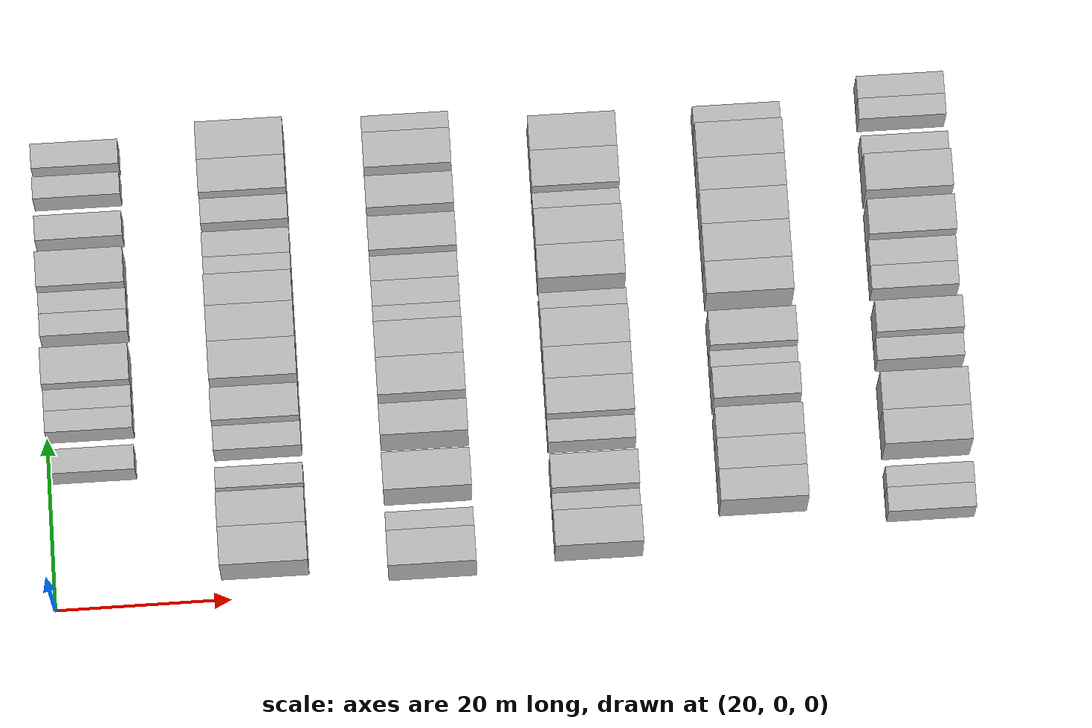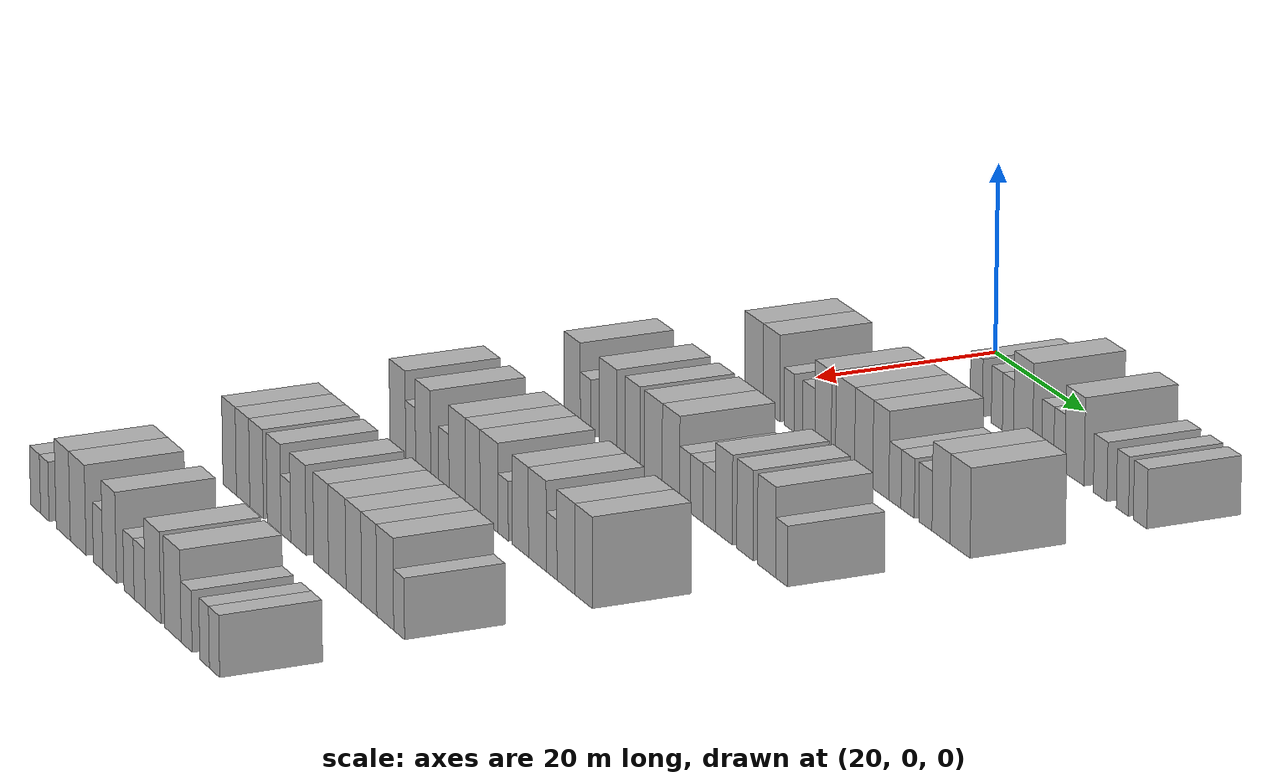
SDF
<sdf version="1.6">
 <world name="default">
  <model name="building_90">
   <static>1</static>
   <pose>25.0000 16.0833 0 0.000000 0.000000 0.000000</pose>
   <link name="link">
    <pose>0 0 3.00 0 0 0</pose>
    <collision name="collision"><geometry><box><size>10.0000 2.8036 6.0000</size></box></geometry></collision>
    <visual name="visual">
     <cast_shadows>0</cast_shadows>
     <geometry><box><size>10.0000 2.8036 6.0000</size></box></geometry>
     <material>
      <script>
       <uri>model://HANNAS_wall/materials/scripts</uri>
       <uri>model://HANNAS_wall/materials/textures</uri>
       <name>vrc/HANNAS_wall</name>
      </script>
     </material>
    </visual>
   </link>
  </model>
  <model name="building_91">
   <static>1</static>
   <pose>25.0000 20.7323 0 0.000000 0.000000 0.000000</pose>
   <link name="link">
    <pose>0 0 3.00 0 0 0</pose>
    <collision name="collision"><geometry><box><size>10.0000 2.4944 6.0000</size></box></geometry></collision>
    <visual name="visual">
     <cast_shadows>0</cast_shadows>
     <geometry><box><size>10.0000 2.4944 6.0000</size></box></geometry>
     <material>
      <script>
       <uri>model://HANNAS_wall/materials/scripts</uri>
       <uri>model://HANNAS_wall/materials/textures</uri>
       <name>vrc/HANNAS_wall</name>
      </script>
     </material>
    </visual>
   </link>
  </model>
  <model name="building_92">
   <static>1</static>
   <pose>25.0000 23.2109 0 0.000000 0.000000 0.000000</pose>
   <link name="link">
    <pose>0 0 3.00 0 0 0</pose>
    <collision name="collision"><geometry><box><size>10.0000 2.4626 6.0000</size></box></geometry></collision>
    <visual name="visual">
     <cast_shadows>0</cast_shadows>
     <geometry><box><size>10.0000 2.4626 6.0000</size></box></geometry>
     <material>
      <script>
       <uri>model://HANNAS_wall/materials/scripts</uri>
       <uri>model://HANNAS_wall/materials/textures</uri>
       <name>vrc/HANNAS_wall</name>
      </script>
     </material>
    </visual>
   </link>
  </model>
  <model name="building_93">
   <static>1</static>
   <pose>25.0000 26.5714 0 0.000000 0.000000 0.000000</pose>
   <link name="link">
    <pose>0 0 4.50 0 0 0</pose>
    <collision name="collision"><geometry><box><size>10.0000 4.2585 9.0000</size></box></geometry></collision>
    <visual name="visual">
     <cast_shadows>0</cast_shadows>
     <geometry><box><size>10.0000 4.2585 9.0000</size></box></geometry>
     <material>
      <script>
       <uri>model://HANNAS_wall/materials/scripts</uri>
       <uri>model://HANNAS_wall/materials/textures</uri>
       <name>vrc/HANNAS_wall</name>
      </script>
     </material>
    </visual>
   </link>
  </model>
  <model name="building_94">
   <static>1</static>
   <pose>25.0000 32.0183 0 0.000000 0.000000 0.000000</pose>
   <link name="link">
    <pose>0 0 3.00 0 0 0</pose>
    <collision name="collision"><geometry><box><size>10.0000 2.6353 6.0000</size></box></geometry></collision>
    <visual name="visual">
     <cast_shadows>0</cast_shadows>
     <geometry><box><size>10.0000 2.6353 6.0000</size></box></geometry>
     <material>
      <script>
       <uri>model://HANNAS_wall/materials/scripts</uri>
       <uri>model://HANNAS_wall/materials/textures</uri>
       <name>vrc/HANNAS_wall</name>
      </script>
     </material>
    </visual>
   </link>
  </model>
  <model name="building_95">
   <static>1</static>
   <pose>25.0000 34.5640 0 0.000000 0.000000 0.000000</pose>
   <link name="link">
    <pose>0 0 3.00 0 0 0</pose>
    <collision name="collision"><geometry><box><size>10.0000 2.4560 6.0000</size></box></geometry></collision>
    <visual name="visual">
     <cast_shadows>0</cast_shadows>
     <geometry><box><size>10.0000 2.4560 6.0000</size></box></geometry>
     <material>
      <script>
       <uri>model://HANNAS_wall/materials/scripts</uri>
       <uri>model://HANNAS_wall/materials/textures</uri>
       <name>vrc/HANNAS_wall</name>
      </script>
     </material>
    </visual>
   </link>
  </model>
  <model name="building_96">
   <static>1</static>
   <pose>25.0000 37.8626 0 0.000000 0.000000 0.000000</pose>
   <link name="link">
    <pose>0 0 4.50 0 0 0</pose>
    <collision name="collision"><geometry><box><size>10.0000 4.1412 9.0000</size></box></geometry></collision>
    <visual name="visual">
     <cast_shadows>0</cast_shadows>
     <geometry><box><size>10.0000 4.1412 9.0000</size></box></geometry>
     <material>
      <script>
       <uri>model://HANNAS_wall/materials/scripts</uri>
       <uri>model://HANNAS_wall/materials/textures</uri>
       <name>vrc/HANNAS_wall</name>
      </script>
     </material>
    </visual>
   </link>
  </model>
  <model name="building_97">
   <static>1</static>
   <pose>25.0000 43.3817 0 0.000000 0.000000 0.000000</pose>
   <link name="link">
    <pose>0 0 3.00 0 0 0</pose>
    <collision name="collision"><geometry><box><size>10.0000 2.8970 6.0000</size></box></geometry></collision>
    <visual name="visual">
     <cast_shadows>0</cast_shadows>
     <geometry><box><size>10.0000 2.8970 6.0000</size></box></geometry>
     <material>
      <script>
       <uri>model://HANNAS_wall/materials/scripts</uri>
       <uri>model://HANNAS_wall/materials/textures</uri>
       <name>vrc/HANNAS_wall</name>
      </script>
     </material>
    </visual>
   </link>
  </model>
  <model name="building_98">
   <static>1</static>
   <pose>25.0000 48.1202 0 0.000000 0.000000 0.000000</pose>
   <link name="link">
    <pose>0 0 3.00 0 0 0</pose>
    <collision name="collision"><geometry><box><size>10.0000 2.5799 6.0000</size></box></geometry></collision>
    <visual name="visual">
     <cast_shadows>0</cast_shadows>
     <geometry><box><size>10.0000 2.5799 6.0000</size></box></geometry>
     <material>
      <script>
       <uri>model://HANNAS_wall/materials/scripts</uri>
       <uri>model://HANNAS_wall/materials/textures</uri>
       <name>vrc/HANNAS_wall</name>
      </script>
     </material>
    </visual>
   </link>
  </model>
  <model name="building_99">
   <static>1</static>
   <pose>25.0000 51.8459 0 0.000000 0.000000 0.000000</pose>
   <link name="link">
    <pose>0 0 3.00 0 0 0</pose>
    <collision name="collision"><geometry><box><size>10.0000 2.8715 6.0000</size></box></geometry></collision>
    <visual name="visual">
     <cast_shadows>0</cast_shadows>
     <geometry><box><size>10.0000 2.8715 6.0000</size></box></geometry>
     <material>
      <script>
       <uri>model://HANNAS_wall/materials/scripts</uri>
       <uri>model://HANNAS_wall/materials/textures</uri>
       <name>vrc/HANNAS_wall</name>
      </script>
     </material>
    </visual>
   </link>
  </model>
  <model name="building_256">
   <static>1</static>
   <pose>44.0000 4.5876 0 0.000000 0.000000 0.000000</pose>
   <link name="link">
    <pose>0 0 4.50 0 0 0</pose>
    <collision name="collision"><geometry><box><size>10.0000 4.4167 9.0000</size></box></geometry></collision>
    <visual name="visual">
     <cast_shadows>0</cast_shadows>
     <geometry><box><size>10.0000 4.4167 9.0000</size></box></geometry>
     <material>
      <script>
       <uri>model://HANNAS_wall/materials/scripts</uri>
       <uri>model://HANNAS_wall/materials/textures</uri>
       <name>vrc/HANNAS_wall</name>
      </script>
     </material>
    </visual>
   </link>
  </model>
  <model name="building_257">
   <static>1</static>
   <pose>44.0000 8.8105 0 0.000000 0.000000 0.000000</pose>
   <link name="link">
    <pose>0 0 4.50 0 0 0</pose>
    <collision name="collision"><geometry><box><size>10.0000 4.0291 9.0000</size></box></geometry></collision>
    <visual name="visual">
     <cast_shadows>0</cast_shadows>
     <geometry><box><size>10.0000 4.0291 9.0000</size></box></geometry>
     <material>
      <script>
       <uri>model://HANNAS_wall/materials/scripts</uri>
       <uri>model://HANNAS_wall/materials/textures</uri>
       <name>vrc/HANNAS_wall</name>
      </script>
     </material>
    </visual>
   </link>
  </model>
  <model name="building_258">
   <static>1</static>
   <pose>44.0000 13.0273 0 0.000000 0.000000 0.000000</pose>
   <link name="link">
    <pose>0 0 3.00 0 0 0</pose>
    <collision name="collision"><geometry><box><size>10.0000 2.4045 6.0000</size></box></geometry></collision>
    <visual name="visual">
     <cast_shadows>0</cast_shadows>
     <geometry><box><size>10.0000 2.4045 6.0000</size></box></geometry>
     <material>
      <script>
       <uri>model://HANNAS_wall/materials/scripts</uri>
       <uri>model://HANNAS_wall/materials/textures</uri>
       <name>vrc/HANNAS_wall</name>
      </script>
     </material>
    </visual>
   </link>
  </model>
  <model name="building_259">
   <static>1</static>
   <pose>44.0000 17.6497 0 0.000000 0.000000 0.000000</pose>
   <link name="link">
    <pose>0 0 3.00 0 0 0</pose>
    <collision name="collision"><geometry><box><size>10.0000 2.8404 6.0000</size></box></geometry></collision>
    <visual name="visual">
     <cast_shadows>0</cast_shadows>
     <geometry><box><size>10.0000 2.8404 6.0000</size></box></geometry>
     <material>
      <script>
       <uri>model://HANNAS_wall/materials/scripts</uri>
       <uri>model://HANNAS_wall/materials/textures</uri>
       <name>vrc/HANNAS_wall</name>
      </script>
     </material>
    </visual>
   </link>
  </model>
  <model name="building_260">
   <static>1</static>
   <pose>44.0000 20.9813 0 0.000000 0.000000 0.000000</pose>
   <link name="link">
    <pose>0 0 4.50 0 0 0</pose>
    <collision name="collision"><geometry><box><size>10.0000 3.8229 9.0000</size></box></geometry></collision>
    <visual name="visual">
     <cast_shadows>0</cast_shadows>
     <geometry><box><size>10.0000 3.8229 9.0000</size></box></geometry>
     <material>
      <script>
       <uri>model://HANNAS_wall/materials/scripts</uri>
       <uri>model://HANNAS_wall/materials/textures</uri>
       <name>vrc/HANNAS_wall</name>
      </script>
     </material>
    </visual>
   </link>
  </model>
  <model name="building_261">
   <static>1</static>
   <pose>44.0000 26.0855 0 0.000000 0.000000 0.000000</pose>
   <link name="link">
    <pose>0 0 4.50 0 0 0</pose>
    <collision name="collision"><geometry><box><size>10.0000 4.3855 9.0000</size></box></geometry></collision>
    <visual name="visual">
     <cast_shadows>0</cast_shadows>
     <geometry><box><size>10.0000 4.3855 9.0000</size></box></geometry>
     <material>
      <script>
       <uri>model://HANNAS_wall/materials/scripts</uri>
       <uri>model://HANNAS_wall/materials/textures</uri>
       <name>vrc/HANNAS_wall</name>
      </script>
     </material>
    </visual>
   </link>
  </model>
  <model name="building_262">
   <static>1</static>
   <pose>44.0000 30.3577 0 0.000000 0.000000 0.000000</pose>
   <link name="link">
    <pose>0 0 4.50 0 0 0</pose>
    <collision name="collision"><geometry><box><size>10.0000 4.1587 9.0000</size></box></geometry></collision>
    <visual name="visual">
     <cast_shadows>0</cast_shadows>
     <geometry><box><size>10.0000 4.1587 9.0000</size></box></geometry>
     <material>
      <script>
       <uri>model://HANNAS_wall/materials/scripts</uri>
       <uri>model://HANNAS_wall/materials/textures</uri>
       <name>vrc/HANNAS_wall</name>
      </script>
     </material>
    </visual>
   </link>
  </model>
  <model name="building_263">
   <static>1</static>
   <pose>44.0000 34.2528 0 0.000000 0.000000 0.000000</pose>
   <link name="link">
    <pose>0 0 4.50 0 0 0</pose>
    <collision name="collision"><geometry><box><size>10.0000 3.6316 9.0000</size></box></geometry></collision>
    <visual name="visual">
     <cast_shadows>0</cast_shadows>
     <geometry><box><size>10.0000 3.6316 9.0000</size></box></geometry>
     <material>
      <script>
       <uri>model://HANNAS_wall/materials/scripts</uri>
       <uri>model://HANNAS_wall/materials/textures</uri>
       <name>vrc/HANNAS_wall</name>
      </script>
     </material>
    </visual>
   </link>
  </model>
  <model name="building_264">
   <static>1</static>
   <pose>44.0000 37.4223 0 0.000000 0.000000 0.000000</pose>
   <link name="link">
    <pose>0 0 3.00 0 0 0</pose>
    <collision name="collision"><geometry><box><size>10.0000 2.7074 6.0000</size></box></geometry></collision>
    <visual name="visual">
     <cast_shadows>0</cast_shadows>
     <geometry><box><size>10.0000 2.7074 6.0000</size></box></geometry>
     <material>
      <script>
       <uri>model://HANNAS_wall/materials/scripts</uri>
       <uri>model://HANNAS_wall/materials/textures</uri>
       <name>vrc/HANNAS_wall</name>
      </script>
     </material>
    </visual>
   </link>
  </model>
  <model name="building_265">
   <static>1</static>
   <pose>44.0000 40.2513 0 0.000000 0.000000 0.000000</pose>
   <link name="link">
    <pose>0 0 3.00 0 0 0</pose>
    <collision name="collision"><geometry><box><size>10.0000 2.9506 6.0000</size></box></geometry></collision>
    <visual name="visual">
     <cast_shadows>0</cast_shadows>
     <geometry><box><size>10.0000 2.9506 6.0000</size></box></geometry>
     <material>
      <script>
       <uri>model://HANNAS_wall/materials/scripts</uri>
       <uri>model://HANNAS_wall/materials/textures</uri>
       <name>vrc/HANNAS_wall</name>
      </script>
     </material>
    </visual>
   </link>
  </model>
  <model name="building_266">
   <static>1</static>
   <pose>44.0000 44.1898 0 0.000000 0.000000 0.000000</pose>
   <link name="link">
    <pose>0 0 3.00 0 0 0</pose>
    <collision name="collision"><geometry><box><size>10.0000 2.9263 6.0000</size></box></geometry></collision>
    <visual name="visual">
     <cast_shadows>0</cast_shadows>
     <geometry><box><size>10.0000 2.9263 6.0000</size></box></geometry>
     <material>
      <script>
       <uri>model://HANNAS_wall/materials/scripts</uri>
       <uri>model://HANNAS_wall/materials/textures</uri>
       <name>vrc/HANNAS_wall</name>
      </script>
     </material>
    </visual>
   </link>
  </model>
  <model name="building_267">
   <static>1</static>
   <pose>44.0000 47.6030 0 0.000000 0.000000 0.000000</pose>
   <link name="link">
    <pose>0 0 4.50 0 0 0</pose>
    <collision name="collision"><geometry><box><size>10.0000 3.9002 9.0000</size></box></geometry></collision>
    <visual name="visual">
     <cast_shadows>0</cast_shadows>
     <geometry><box><size>10.0000 3.9002 9.0000</size></box></geometry>
     <material>
      <script>
       <uri>model://HANNAS_wall/materials/scripts</uri>
       <uri>model://HANNAS_wall/materials/textures</uri>
       <name>vrc/HANNAS_wall</name>
      </script>
     </material>
    </visual>
   </link>
  </model>
  <model name="building_268">
   <static>1</static>
   <pose>44.0000 51.7585 0 0.000000 0.000000 0.000000</pose>
   <link name="link">
    <pose>0 0 4.50 0 0 0</pose>
    <collision name="collision"><geometry><box><size>10.0000 4.4108 9.0000</size></box></geometry></collision>
    <visual name="visual">
     <cast_shadows>0</cast_shadows>
     <geometry><box><size>10.0000 4.4108 9.0000</size></box></geometry>
     <material>
      <script>
       <uri>model://HANNAS_wall/materials/scripts</uri>
       <uri>model://HANNAS_wall/materials/textures</uri>
       <name>vrc/HANNAS_wall</name>
      </script>
     </material>
    </visual>
   </link>
  </model>
  <model name="building_424">
   <static>1</static>
   <pose>63.0000 3.1468 0 0.000000 0.000000 0.000000</pose>
   <link name="link">
    <pose>0 0 4.50 0 0 0</pose>
    <collision name="collision"><geometry><box><size>10.0000 4.0609 9.0000</size></box></geometry></collision>
    <visual name="visual">
     <cast_shadows>0</cast_shadows>
     <geometry><box><size>10.0000 4.0609 9.0000</size></box></geometry>
     <material>
      <script>
       <uri>model://HANNAS_wall/materials/scripts</uri>
       <uri>model://HANNAS_wall/materials/textures</uri>
       <name>vrc/HANNAS_wall</name>
      </script>
     </material>
    </visual>
   </link>
  </model>
  <model name="building_425">
   <static>1</static>
   <pose>63.0000 6.5162 0 0.000000 0.000000 0.000000</pose>
   <link name="link">
    <pose>0 0 3.00 0 0 0</pose>
    <collision name="collision"><geometry><box><size>10.0000 2.6780 6.0000</size></box></geometry></collision>
    <visual name="visual">
     <cast_shadows>0</cast_shadows>
     <geometry><box><size>10.0000 2.6780 6.0000</size></box></geometry>
     <material>
      <script>
       <uri>model://HANNAS_wall/materials/scripts</uri>
       <uri>model://HANNAS_wall/materials/textures</uri>
       <name>vrc/HANNAS_wall</name>
      </script>
     </material>
    </visual>
   </link>
  </model>
  <model name="building_426">
   <static>1</static>
   <pose>63.0000 12.0176 0 0.000000 0.000000 0.000000</pose>
   <link name="link">
    <pose>0 0 4.50 0 0 0</pose>
    <collision name="collision"><geometry><box><size>10.0000 4.3248 9.0000</size></box></geometry></collision>
    <visual name="visual">
     <cast_shadows>0</cast_shadows>
     <geometry><box><size>10.0000 4.3248 9.0000</size></box></geometry>
     <material>
      <script>
       <uri>model://HANNAS_wall/materials/scripts</uri>
       <uri>model://HANNAS_wall/materials/textures</uri>
       <name>vrc/HANNAS_wall</name>
      </script>
     </material>
    </visual>
   </link>
  </model>
  <model name="building_427">
   <static>1</static>
   <pose>63.0000 18.0112 0 0.000000 0.000000 0.000000</pose>
   <link name="link">
    <pose>0 0 4.50 0 0 0</pose>
    <collision name="collision"><geometry><box><size>10.0000 3.6624 9.0000</size></box></geometry></collision>
    <visual name="visual">
     <cast_shadows>0</cast_shadows>
     <geometry><box><size>10.0000 3.6624 9.0000</size></box></geometry>
     <material>
      <script>
       <uri>model://HANNAS_wall/materials/scripts</uri>
       <uri>model://HANNAS_wall/materials/textures</uri>
       <name>vrc/HANNAS_wall</name>
      </script>
     </material>
    </visual>
   </link>
  </model>
  <model name="building_428">
   <static>1</static>
   <pose>63.0000 23.0240 0 0.000000 0.000000 0.000000</pose>
   <link name="link">
    <pose>0 0 4.50 0 0 0</pose>
    <collision name="collision"><geometry><box><size>10.0000 4.3631 9.0000</size></box></geometry></collision>
    <visual name="visual">
     <cast_shadows>0</cast_shadows>
     <geometry><box><size>10.0000 4.3631 9.0000</size></box></geometry>
     <material>
      <script>
       <uri>model://HANNAS_wall/materials/scripts</uri>
       <uri>model://HANNAS_wall/materials/textures</uri>
       <name>vrc/HANNAS_wall</name>
      </script>
     </material>
    </visual>
   </link>
  </model>
  <model name="building_429">
   <static>1</static>
   <pose>63.0000 27.2907 0 0.000000 0.000000 0.000000</pose>
   <link name="link">
    <pose>0 0 4.50 0 0 0</pose>
    <collision name="collision"><geometry><box><size>10.0000 4.1704 9.0000</size></box></geometry></collision>
    <visual name="visual">
     <cast_shadows>0</cast_shadows>
     <geometry><box><size>10.0000 4.1704 9.0000</size></box></geometry>
     <material>
      <script>
       <uri>model://HANNAS_wall/materials/scripts</uri>
       <uri>model://HANNAS_wall/materials/textures</uri>
       <name>vrc/HANNAS_wall</name>
      </script>
     </material>
    </visual>
   </link>
  </model>
  <model name="building_430">
   <static>1</static>
   <pose>63.0000 30.6071 0 0.000000 0.000000 0.000000</pose>
   <link name="link">
    <pose>0 0 3.00 0 0 0</pose>
    <collision name="collision"><geometry><box><size>10.0000 2.4624 6.0000</size></box></geometry></collision>
    <visual name="visual">
     <cast_shadows>0</cast_shadows>
     <geometry><box><size>10.0000 2.4624 6.0000</size></box></geometry>
     <material>
      <script>
       <uri>model://HANNAS_wall/materials/scripts</uri>
       <uri>model://HANNAS_wall/materials/textures</uri>
       <name>vrc/HANNAS_wall</name>
      </script>
     </material>
    </visual>
   </link>
  </model>
  <model name="building_431">
   <static>1</static>
   <pose>63.0000 33.3102 0 0.000000 0.000000 0.000000</pose>
   <link name="link">
    <pose>0 0 3.00 0 0 0</pose>
    <collision name="collision"><geometry><box><size>10.0000 2.9438 6.0000</size></box></geometry></collision>
    <visual name="visual">
     <cast_shadows>0</cast_shadows>
     <geometry><box><size>10.0000 2.9438 6.0000</size></box></geometry>
     <material>
      <script>
       <uri>model://HANNAS_wall/materials/scripts</uri>
       <uri>model://HANNAS_wall/materials/textures</uri>
       <name>vrc/HANNAS_wall</name>
      </script>
     </material>
    </visual>
   </link>
  </model>
  <model name="building_432">
   <static>1</static>
   <pose>63.0000 36.2395 0 0.000000 0.000000 0.000000</pose>
   <link name="link">
    <pose>0 0 3.00 0 0 0</pose>
    <collision name="collision"><geometry><box><size>10.0000 2.9147 6.0000</size></box></geometry></collision>
    <visual name="visual">
     <cast_shadows>0</cast_shadows>
     <geometry><box><size>10.0000 2.9147 6.0000</size></box></geometry>
     <material>
      <script>
       <uri>model://HANNAS_wall/materials/scripts</uri>
       <uri>model://HANNAS_wall/materials/textures</uri>
       <name>vrc/HANNAS_wall</name>
      </script>
     </material>
    </visual>
   </link>
  </model>
  <model name="building_433">
   <static>1</static>
   <pose>63.0000 39.6796 0 0.000000 0.000000 0.000000</pose>
   <link name="link">
    <pose>0 0 4.50 0 0 0</pose>
    <collision name="collision"><geometry><box><size>10.0000 3.9654 9.0000</size></box></geometry></collision>
    <visual name="visual">
     <cast_shadows>0</cast_shadows>
     <geometry><box><size>10.0000 3.9654 9.0000</size></box></geometry>
     <material>
      <script>
       <uri>model://HANNAS_wall/materials/scripts</uri>
       <uri>model://HANNAS_wall/materials/textures</uri>
       <name>vrc/HANNAS_wall</name>
      </script>
     </material>
    </visual>
   </link>
  </model>
  <model name="building_434">
   <static>1</static>
   <pose>63.0000 44.5331 0 0.000000 0.000000 0.000000</pose>
   <link name="link">
    <pose>0 0 4.50 0 0 0</pose>
    <collision name="collision"><geometry><box><size>10.0000 3.7416 9.0000</size></box></geometry></collision>
    <visual name="visual">
     <cast_shadows>0</cast_shadows>
     <geometry><box><size>10.0000 3.7416 9.0000</size></box></geometry>
     <material>
      <script>
       <uri>model://HANNAS_wall/materials/scripts</uri>
       <uri>model://HANNAS_wall/materials/textures</uri>
       <name>vrc/HANNAS_wall</name>
      </script>
     </material>
    </visual>
   </link>
  </model>
  <model name="building_435">
   <static>1</static>
   <pose>63.0000 49.4619 0 0.000000 0.000000 0.000000</pose>
   <link name="link">
    <pose>0 0 4.50 0 0 0</pose>
    <collision name="collision"><geometry><box><size>10.0000 4.1161 9.0000</size></box></geometry></collision>
    <visual name="visual">
     <cast_shadows>0</cast_shadows>
     <geometry><box><size>10.0000 4.1161 9.0000</size></box></geometry>
     <material>
      <script>
       <uri>model://HANNAS_wall/materials/scripts</uri>
       <uri>model://HANNAS_wall/materials/textures</uri>
       <name>vrc/HANNAS_wall</name>
      </script>
     </material>
    </visual>
   </link>
  </model>
  <model name="building_436">
   <static>1</static>
   <pose>63.0000 52.8478 0 0.000000 0.000000 0.000000</pose>
   <link name="link">
    <pose>0 0 3.00 0 0 0</pose>
    <collision name="collision"><geometry><box><size>10.0000 2.6557 6.0000</size></box></geometry></collision>
    <visual name="visual">
     <cast_shadows>0</cast_shadows>
     <geometry><box><size>10.0000 2.6557 6.0000</size></box></geometry>
     <material>
      <script>
       <uri>model://HANNAS_wall/materials/scripts</uri>
       <uri>model://HANNAS_wall/materials/textures</uri>
       <name>vrc/HANNAS_wall</name>
      </script>
     </material>
    </visual>
   </link>
  </model>
  <model name="building_599">
   <static>1</static>
   <pose>82.0000 4.2342 0 0.000000 0.000000 0.000000</pose>
   <link name="link">
    <pose>0 0 4.50 0 0 0</pose>
    <collision name="collision"><geometry><box><size>10.0000 4.1222 9.0000</size></box></geometry></collision>
    <visual name="visual">
     <cast_shadows>0</cast_shadows>
     <geometry><box><size>10.0000 4.1222 9.0000</size></box></geometry>
     <material>
      <script>
       <uri>model://HANNAS_wall/materials/scripts</uri>
       <uri>model://HANNAS_wall/materials/textures</uri>
       <name>vrc/HANNAS_wall</name>
      </script>
     </material>
    </visual>
   </link>
  </model>
  <model name="building_600">
   <static>1</static>
   <pose>82.0000 7.5765 0 0.000000 0.000000 0.000000</pose>
   <link name="link">
    <pose>0 0 3.00 0 0 0</pose>
    <collision name="collision"><geometry><box><size>10.0000 2.5625 6.0000</size></box></geometry></collision>
    <visual name="visual">
     <cast_shadows>0</cast_shadows>
     <geometry><box><size>10.0000 2.5625 6.0000</size></box></geometry>
     <material>
      <script>
       <uri>model://HANNAS_wall/materials/scripts</uri>
       <uri>model://HANNAS_wall/materials/textures</uri>
       <name>vrc/HANNAS_wall</name>
      </script>
     </material>
    </visual>
   </link>
  </model>
  <model name="building_601">
   <static>1</static>
   <pose>82.0000 10.8044 0 0.000000 0.000000 0.000000</pose>
   <link name="link">
    <pose>0 0 4.50 0 0 0</pose>
    <collision name="collision"><geometry><box><size>10.0000 3.8935 9.0000</size></box></geometry></collision>
    <visual name="visual">
     <cast_shadows>0</cast_shadows>
     <geometry><box><size>10.0000 3.8935 9.0000</size></box></geometry>
     <material>
      <script>
       <uri>model://HANNAS_wall/materials/scripts</uri>
       <uri>model://HANNAS_wall/materials/textures</uri>
       <name>vrc/HANNAS_wall</name>
      </script>
     </material>
    </visual>
   </link>
  </model>
  <model name="building_602">
   <static>1</static>
   <pose>82.0000 16.0807 0 0.000000 0.000000 0.000000</pose>
   <link name="link">
    <pose>0 0 3.00 0 0 0</pose>
    <collision name="collision"><geometry><box><size>10.0000 2.6590 6.0000</size></box></geometry></collision>
    <visual name="visual">
     <cast_shadows>0</cast_shadows>
     <geometry><box><size>10.0000 2.6590 6.0000</size></box></geometry>
     <material>
      <script>
       <uri>model://HANNAS_wall/materials/scripts</uri>
       <uri>model://HANNAS_wall/materials/textures</uri>
       <name>vrc/HANNAS_wall</name>
      </script>
     </material>
    </visual>
   </link>
  </model>
  <model name="building_603">
   <static>1</static>
   <pose>82.0000 19.4810 0 0.000000 0.000000 0.000000</pose>
   <link name="link">
    <pose>0 0 4.50 0 0 0</pose>
    <collision name="collision"><geometry><box><size>10.0000 4.1417 9.0000</size></box></geometry></collision>
    <visual name="visual">
     <cast_shadows>0</cast_shadows>
     <geometry><box><size>10.0000 4.1417 9.0000</size></box></geometry>
     <material>
      <script>
       <uri>model://HANNAS_wall/materials/scripts</uri>
       <uri>model://HANNAS_wall/materials/textures</uri>
       <name>vrc/HANNAS_wall</name>
      </script>
     </material>
    </visual>
   </link>
  </model>
  <model name="building_604">
   <static>1</static>
   <pose>82.0000 23.3853 0 0.000000 0.000000 0.000000</pose>
   <link name="link">
    <pose>0 0 4.50 0 0 0</pose>
    <collision name="collision"><geometry><box><size>10.0000 3.6668 9.0000</size></box></geometry></collision>
    <visual name="visual">
     <cast_shadows>0</cast_shadows>
     <geometry><box><size>10.0000 3.6668 9.0000</size></box></geometry>
     <material>
      <script>
       <uri>model://HANNAS_wall/materials/scripts</uri>
       <uri>model://HANNAS_wall/materials/textures</uri>
       <name>vrc/HANNAS_wall</name>
      </script>
     </material>
    </visual>
   </link>
  </model>
  <model name="building_605">
   <static>1</static>
   <pose>82.0000 27.4371 0 0.000000 0.000000 0.000000</pose>
   <link name="link">
    <pose>0 0 4.50 0 0 0</pose>
    <collision name="collision"><geometry><box><size>10.0000 4.4370 9.0000</size></box></geometry></collision>
    <visual name="visual">
     <cast_shadows>0</cast_shadows>
     <geometry><box><size>10.0000 4.4370 9.0000</size></box></geometry>
     <material>
      <script>
       <uri>model://HANNAS_wall/materials/scripts</uri>
       <uri>model://HANNAS_wall/materials/textures</uri>
       <name>vrc/HANNAS_wall</name>
      </script>
     </material>
    </visual>
   </link>
  </model>
  <model name="building_606">
   <static>1</static>
   <pose>82.0000 30.9213 0 0.000000 0.000000 0.000000</pose>
   <link name="link">
    <pose>0 0 3.00 0 0 0</pose>
    <collision name="collision"><geometry><box><size>10.0000 2.5314 6.0000</size></box></geometry></collision>
    <visual name="visual">
     <cast_shadows>0</cast_shadows>
     <geometry><box><size>10.0000 2.5314 6.0000</size></box></geometry>
     <material>
      <script>
       <uri>model://HANNAS_wall/materials/scripts</uri>
       <uri>model://HANNAS_wall/materials/textures</uri>
       <name>vrc/HANNAS_wall</name>
      </script>
     </material>
    </visual>
   </link>
  </model>
  <model name="building_607">
   <static>1</static>
   <pose>82.0000 35.1420 0 0.000000 0.000000 0.000000</pose>
   <link name="link">
    <pose>0 0 4.50 0 0 0</pose>
    <collision name="collision"><geometry><box><size>10.0000 3.9100 9.0000</size></box></geometry></collision>
    <visual name="visual">
     <cast_shadows>0</cast_shadows>
     <geometry><box><size>10.0000 3.9100 9.0000</size></box></geometry>
     <material>
      <script>
       <uri>model://HANNAS_wall/materials/scripts</uri>
       <uri>model://HANNAS_wall/materials/textures</uri>
       <name>vrc/HANNAS_wall</name>
      </script>
     </material>
    </visual>
   </link>
  </model>
  <model name="building_608">
   <static>1</static>
   <pose>82.0000 39.2392 0 0.000000 0.000000 0.000000</pose>
   <link name="link">
    <pose>0 0 4.50 0 0 0</pose>
    <collision name="collision"><geometry><box><size>10.0000 4.2843 9.0000</size></box></geometry></collision>
    <visual name="visual">
     <cast_shadows>0</cast_shadows>
     <geometry><box><size>10.0000 4.2843 9.0000</size></box></geometry>
     <material>
      <script>
       <uri>model://HANNAS_wall/materials/scripts</uri>
       <uri>model://HANNAS_wall/materials/textures</uri>
       <name>vrc/HANNAS_wall</name>
      </script>
     </material>
    </visual>
   </link>
  </model>
  <model name="building_609">
   <static>1</static>
   <pose>82.0000 42.6592 0 0.000000 0.000000 0.000000</pose>
   <link name="link">
    <pose>0 0 3.00 0 0 0</pose>
    <collision name="collision"><geometry><box><size>10.0000 2.5557 6.0000</size></box></geometry></collision>
    <visual name="visual">
     <cast_shadows>0</cast_shadows>
     <geometry><box><size>10.0000 2.5557 6.0000</size></box></geometry>
     <material>
      <script>
       <uri>model://HANNAS_wall/materials/scripts</uri>
       <uri>model://HANNAS_wall/materials/textures</uri>
       <name>vrc/HANNAS_wall</name>
      </script>
     </material>
    </visual>
   </link>
  </model>
  <model name="building_610">
   <static>1</static>
   <pose>82.0000 46.0772 0 0.000000 0.000000 0.000000</pose>
   <link name="link">
    <pose>0 0 4.50 0 0 0</pose>
    <collision name="collision"><geometry><box><size>10.0000 4.2804 9.0000</size></box></geometry></collision>
    <visual name="visual">
     <cast_shadows>0</cast_shadows>
     <geometry><box><size>10.0000 4.2804 9.0000</size></box></geometry>
     <material>
      <script>
       <uri>model://HANNAS_wall/materials/scripts</uri>
       <uri>model://HANNAS_wall/materials/textures</uri>
       <name>vrc/HANNAS_wall</name>
      </script>
     </material>
    </visual>
   </link>
  </model>
  <model name="building_611">
   <static>1</static>
   <pose>82.0000 50.2443 0 0.000000 0.000000 0.000000</pose>
   <link name="link">
    <pose>0 0 4.50 0 0 0</pose>
    <collision name="collision"><geometry><box><size>10.0000 4.0539 9.0000</size></box></geometry></collision>
    <visual name="visual">
     <cast_shadows>0</cast_shadows>
     <geometry><box><size>10.0000 4.0539 9.0000</size></box></geometry>
     <material>
      <script>
       <uri>model://HANNAS_wall/materials/scripts</uri>
       <uri>model://HANNAS_wall/materials/textures</uri>
       <name>vrc/HANNAS_wall</name>
      </script>
     </material>
    </visual>
   </link>
  </model>
  <model name="building_771">
   <static>1</static>
   <pose>101.0000 8.0228 0 0.000000 0.000000 0.000000</pose>
   <link name="link">
    <pose>0 0 4.50 0 0 0</pose>
    <collision name="collision"><geometry><box><size>10.0000 3.6278 9.0000</size></box></geometry></collision>
    <visual name="visual">
     <cast_shadows>0</cast_shadows>
     <geometry><box><size>10.0000 3.6278 9.0000</size></box></geometry>
     <material>
      <script>
       <uri>model://HANNAS_wall/materials/scripts</uri>
       <uri>model://HANNAS_wall/materials/textures</uri>
       <name>vrc/HANNAS_wall</name>
      </script>
     </material>
    </visual>
   </link>
  </model>
  <model name="building_772">
   <static>1</static>
   <pose>101.0000 11.6389 0 0.000000 0.000000 0.000000</pose>
   <link name="link">
    <pose>0 0 4.50 0 0 0</pose>
    <collision name="collision"><geometry><box><size>10.0000 3.6043 9.0000</size></box></geometry></collision>
    <visual name="visual">
     <cast_shadows>0</cast_shadows>
     <geometry><box><size>10.0000 3.6043 9.0000</size></box></geometry>
     <material>
      <script>
       <uri>model://HANNAS_wall/materials/scripts</uri>
       <uri>model://HANNAS_wall/materials/textures</uri>
       <name>vrc/HANNAS_wall</name>
      </script>
     </material>
    </visual>
   </link>
  </model>
  <model name="building_773">
   <static>1</static>
   <pose>101.0000 15.2428 0 0.000000 0.000000 0.000000</pose>
   <link name="link">
    <pose>0 0 4.50 0 0 0</pose>
    <collision name="collision"><geometry><box><size>10.0000 3.6036 9.0000</size></box></geometry></collision>
    <visual name="visual">
     <cast_shadows>0</cast_shadows>
     <geometry><box><size>10.0000 3.6036 9.0000</size></box></geometry>
     <material>
      <script>
       <uri>model://HANNAS_wall/materials/scripts</uri>
       <uri>model://HANNAS_wall/materials/textures</uri>
       <name>vrc/HANNAS_wall</name>
      </script>
     </material>
    </visual>
   </link>
  </model>
  <model name="building_774">
   <static>1</static>
   <pose>101.0000 19.8646 0 0.000000 0.000000 0.000000</pose>
   <link name="link">
    <pose>0 0 4.50 0 0 0</pose>
    <collision name="collision"><geometry><box><size>10.0000 3.6400 9.0000</size></box></geometry></collision>
    <visual name="visual">
     <cast_shadows>0</cast_shadows>
     <geometry><box><size>10.0000 3.6400 9.0000</size></box></geometry>
     <material>
      <script>
       <uri>model://HANNAS_wall/materials/scripts</uri>
       <uri>model://HANNAS_wall/materials/textures</uri>
       <name>vrc/HANNAS_wall</name>
      </script>
     </material>
    </visual>
   </link>
  </model>
  <model name="building_775">
   <static>1</static>
   <pose>101.0000 22.9486 0 0.000000 0.000000 0.000000</pose>
   <link name="link">
    <pose>0 0 3.00 0 0 0</pose>
    <collision name="collision"><geometry><box><size>10.0000 2.5281 6.0000</size></box></geometry></collision>
    <visual name="visual">
     <cast_shadows>0</cast_shadows>
     <geometry><box><size>10.0000 2.5281 6.0000</size></box></geometry>
     <material>
      <script>
       <uri>model://HANNAS_wall/materials/scripts</uri>
       <uri>model://HANNAS_wall/materials/textures</uri>
       <name>vrc/HANNAS_wall</name>
      </script>
     </material>
    </visual>
   </link>
  </model>
  <model name="building_776">
   <static>1</static>
   <pose>101.0000 26.2231 0 0.000000 0.000000 0.000000</pose>
   <link name="link">
    <pose>0 0 4.50 0 0 0</pose>
    <collision name="collision"><geometry><box><size>10.0000 4.0208 9.0000</size></box></geometry></collision>
    <visual name="visual">
     <cast_shadows>0</cast_shadows>
     <geometry><box><size>10.0000 4.0208 9.0000</size></box></geometry>
     <material>
      <script>
       <uri>model://HANNAS_wall/materials/scripts</uri>
       <uri>model://HANNAS_wall/materials/textures</uri>
       <name>vrc/HANNAS_wall</name>
      </script>
     </material>
    </visual>
   </link>
  </model>
  <model name="building_777">
   <static>1</static>
   <pose>101.0000 32.1150 0 0.000000 0.000000 0.000000</pose>
   <link name="link">
    <pose>0 0 4.50 0 0 0</pose>
    <collision name="collision"><geometry><box><size>10.0000 3.7631 9.0000</size></box></geometry></collision>
    <visual name="visual">
     <cast_shadows>0</cast_shadows>
     <geometry><box><size>10.0000 3.7631 9.0000</size></box></geometry>
     <material>
      <script>
       <uri>model://HANNAS_wall/materials/scripts</uri>
       <uri>model://HANNAS_wall/materials/textures</uri>
       <name>vrc/HANNAS_wall</name>
      </script>
     </material>
    </visual>
   </link>
  </model>
  <model name="building_778">
   <static>1</static>
   <pose>101.0000 36.1975 0 0.000000 0.000000 0.000000</pose>
   <link name="link">
    <pose>0 0 4.50 0 0 0</pose>
    <collision name="collision"><geometry><box><size>10.0000 4.4019 9.0000</size></box></geometry></collision>
    <visual name="visual">
     <cast_shadows>0</cast_shadows>
     <geometry><box><size>10.0000 4.4019 9.0000</size></box></geometry>
     <material>
      <script>
       <uri>model://HANNAS_wall/materials/scripts</uri>
       <uri>model://HANNAS_wall/materials/textures</uri>
       <name>vrc/HANNAS_wall</name>
      </script>
     </material>
    </visual>
   </link>
  </model>
  <model name="building_779">
   <static>1</static>
   <pose>101.0000 40.3726 0 0.000000 0.000000 0.000000</pose>
   <link name="link">
    <pose>0 0 4.50 0 0 0</pose>
    <collision name="collision"><geometry><box><size>10.0000 3.9484 9.0000</size></box></geometry></collision>
    <visual name="visual">
     <cast_shadows>0</cast_shadows>
     <geometry><box><size>10.0000 3.9484 9.0000</size></box></geometry>
     <material>
      <script>
       <uri>model://HANNAS_wall/materials/scripts</uri>
       <uri>model://HANNAS_wall/materials/textures</uri>
       <name>vrc/HANNAS_wall</name>
      </script>
     </material>
    </visual>
   </link>
  </model>
  <model name="building_780">
   <static>1</static>
   <pose>101.0000 44.2325 0 0.000000 0.000000 0.000000</pose>
   <link name="link">
    <pose>0 0 4.50 0 0 0</pose>
    <collision name="collision"><geometry><box><size>10.0000 3.7713 9.0000</size></box></geometry></collision>
    <visual name="visual">
     <cast_shadows>0</cast_shadows>
     <geometry><box><size>10.0000 3.7713 9.0000</size></box></geometry>
     <material>
      <script>
       <uri>model://HANNAS_wall/materials/scripts</uri>
       <uri>model://HANNAS_wall/materials/textures</uri>
       <name>vrc/HANNAS_wall</name>
      </script>
     </material>
    </visual>
   </link>
  </model>
  <model name="building_781">
   <static>1</static>
   <pose>101.0000 48.1990 0 0.000000 0.000000 0.000000</pose>
   <link name="link">
    <pose>0 0 4.50 0 0 0</pose>
    <collision name="collision"><geometry><box><size>10.0000 4.1616 9.0000</size></box></geometry></collision>
    <visual name="visual">
     <cast_shadows>0</cast_shadows>
     <geometry><box><size>10.0000 4.1616 9.0000</size></box></geometry>
     <material>
      <script>
       <uri>model://HANNAS_wall/materials/scripts</uri>
       <uri>model://HANNAS_wall/materials/textures</uri>
       <name>vrc/HANNAS_wall</name>
      </script>
     </material>
    </visual>
   </link>
  </model>
  <model name="building_782">
   <static>1</static>
   <pose>101.0000 51.6075 0 0.000000 0.000000 0.000000</pose>
   <link name="link">
    <pose>0 0 3.00 0 0 0</pose>
    <collision name="collision"><geometry><box><size>10.0000 2.6555 6.0000</size></box></geometry></collision>
    <visual name="visual">
     <cast_shadows>0</cast_shadows>
     <geometry><box><size>10.0000 2.6555 6.0000</size></box></geometry>
     <material>
      <script>
       <uri>model://HANNAS_wall/materials/scripts</uri>
       <uri>model://HANNAS_wall/materials/textures</uri>
       <name>vrc/HANNAS_wall</name>
      </script>
     </material>
    </visual>
   </link>
  </model>
  <model name="building_942">
   <static>1</static>
   <pose>120.0000 5.7524 0 0.000000 0.000000 0.000000</pose>
   <link name="link">
    <pose>0 0 3.00 0 0 0</pose>
    <collision name="collision"><geometry><box><size>10.0000 2.8237 6.0000</size></box></geometry></collision>
    <visual name="visual">
     <cast_shadows>0</cast_shadows>
     <geometry><box><size>10.0000 2.8237 6.0000</size></box></geometry>
     <material>
      <script>
       <uri>model://HANNAS_wall/materials/scripts</uri>
       <uri>model://HANNAS_wall/materials/textures</uri>
       <name>vrc/HANNAS_wall</name>
      </script>
     </material>
    </visual>
   </link>
  </model>
  <model name="building_943">
   <static>1</static>
   <pose>120.0000 8.3646 0 0.000000 0.000000 0.000000</pose>
   <link name="link">
    <pose>0 0 3.00 0 0 0</pose>
    <collision name="collision"><geometry><box><size>10.0000 2.4008 6.0000</size></box></geometry></collision>
    <visual name="visual">
     <cast_shadows>0</cast_shadows>
     <geometry><box><size>10.0000 2.4008 6.0000</size></box></geometry>
     <material>
      <script>
       <uri>model://HANNAS_wall/materials/scripts</uri>
       <uri>model://HANNAS_wall/materials/textures</uri>
       <name>vrc/HANNAS_wall</name>
      </script>
     </material>
    </visual>
   </link>
  </model>
  <model name="building_944">
   <static>1</static>
   <pose>120.0000 13.5516 0 0.000000 0.000000 0.000000</pose>
   <link name="link">
    <pose>0 0 4.50 0 0 0</pose>
    <collision name="collision"><geometry><box><size>10.0000 3.9733 9.0000</size></box></geometry></collision>
    <visual name="visual">
     <cast_shadows>0</cast_shadows>
     <geometry><box><size>10.0000 3.9733 9.0000</size></box></geometry>
     <material>
      <script>
       <uri>model://HANNAS_wall/materials/scripts</uri>
       <uri>model://HANNAS_wall/materials/textures</uri>
       <name>vrc/HANNAS_wall</name>
      </script>
     </material>
    </visual>
   </link>
  </model>
  <model name="building_945">
   <static>1</static>
   <pose>120.0000 17.7330 0 0.000000 0.000000 0.000000</pose>
   <link name="link">
    <pose>0 0 4.50 0 0 0</pose>
    <collision name="collision"><geometry><box><size>10.0000 4.3894 9.0000</size></box></geometry></collision>
    <visual name="visual">
     <cast_shadows>0</cast_shadows>
     <geometry><box><size>10.0000 4.3894 9.0000</size></box></geometry>
     <material>
      <script>
       <uri>model://HANNAS_wall/materials/scripts</uri>
       <uri>model://HANNAS_wall/materials/textures</uri>
       <name>vrc/HANNAS_wall</name>
      </script>
     </material>
    </visual>
   </link>
  </model>
  <model name="building_946">
   <static>1</static>
   <pose>120.0000 23.2335 0 0.000000 0.000000 0.000000</pose>
   <link name="link">
    <pose>0 0 3.00 0 0 0</pose>
    <collision name="collision"><geometry><box><size>10.0000 2.6117 6.0000</size></box></geometry></collision>
    <visual name="visual">
     <cast_shadows>0</cast_shadows>
     <geometry><box><size>10.0000 2.6117 6.0000</size></box></geometry>
     <material>
      <script>
       <uri>model://HANNAS_wall/materials/scripts</uri>
       <uri>model://HANNAS_wall/materials/textures</uri>
       <name>vrc/HANNAS_wall</name>
      </script>
     </material>
    </visual>
   </link>
  </model>
  <model name="building_947">
   <static>1</static>
   <pose>120.0000 26.3928 0 0.000000 0.000000 0.000000</pose>
   <link name="link">
    <pose>0 0 4.50 0 0 0</pose>
    <collision name="collision"><geometry><box><size>10.0000 3.7068 9.0000</size></box></geometry></collision>
    <visual name="visual">
     <cast_shadows>0</cast_shadows>
     <geometry><box><size>10.0000 3.7068 9.0000</size></box></geometry>
     <material>
      <script>
       <uri>model://HANNAS_wall/materials/scripts</uri>
       <uri>model://HANNAS_wall/materials/textures</uri>
       <name>vrc/HANNAS_wall</name>
      </script>
     </material>
    </visual>
   </link>
  </model>
  <model name="building_948">
   <static>1</static>
   <pose>120.0000 31.6231 0 0.000000 0.000000 0.000000</pose>
   <link name="link">
    <pose>0 0 3.00 0 0 0</pose>
    <collision name="collision"><geometry><box><size>10.0000 2.7538 6.0000</size></box></geometry></collision>
    <visual name="visual">
     <cast_shadows>0</cast_shadows>
     <geometry><box><size>10.0000 2.7538 6.0000</size></box></geometry>
     <material>
      <script>
       <uri>model://HANNAS_wall/materials/scripts</uri>
       <uri>model://HANNAS_wall/materials/textures</uri>
       <name>vrc/HANNAS_wall</name>
      </script>
     </material>
    </visual>
   </link>
  </model>
  <model name="building_949">
   <static>1</static>
   <pose>120.0000 34.4984 0 0.000000 0.000000 0.000000</pose>
   <link name="link">
    <pose>0 0 3.00 0 0 0</pose>
    <collision name="collision"><geometry><box><size>10.0000 2.9970 6.0000</size></box></geometry></collision>
    <visual name="visual">
     <cast_shadows>0</cast_shadows>
     <geometry><box><size>10.0000 2.9970 6.0000</size></box></geometry>
     <material>
      <script>
       <uri>model://HANNAS_wall/materials/scripts</uri>
       <uri>model://HANNAS_wall/materials/textures</uri>
       <name>vrc/HANNAS_wall</name>
      </script>
     </material>
    </visual>
   </link>
  </model>
  <model name="building_950">
   <static>1</static>
   <pose>120.0000 38.0505 0 0.000000 0.000000 0.000000</pose>
   <link name="link">
    <pose>0 0 4.50 0 0 0</pose>
    <collision name="collision"><geometry><box><size>10.0000 4.1073 9.0000</size></box></geometry></collision>
    <visual name="visual">
     <cast_shadows>0</cast_shadows>
     <geometry><box><size>10.0000 4.1073 9.0000</size></box></geometry>
     <material>
      <script>
       <uri>model://HANNAS_wall/materials/scripts</uri>
       <uri>model://HANNAS_wall/materials/textures</uri>
       <name>vrc/HANNAS_wall</name>
      </script>
     </material>
    </visual>
   </link>
  </model>
  <model name="building_951">
   <static>1</static>
   <pose>120.0000 43.2707 0 0.000000 0.000000 0.000000</pose>
   <link name="link">
    <pose>0 0 4.50 0 0 0</pose>
    <collision name="collision"><geometry><box><size>10.0000 4.3331 9.0000</size></box></geometry></collision>
    <visual name="visual">
     <cast_shadows>0</cast_shadows>
     <geometry><box><size>10.0000 4.3331 9.0000</size></box></geometry>
     <material>
      <script>
       <uri>model://HANNAS_wall/materials/scripts</uri>
       <uri>model://HANNAS_wall/materials/textures</uri>
       <name>vrc/HANNAS_wall</name>
      </script>
     </material>
    </visual>
   </link>
  </model>
  <model name="building_952">
   <static>1</static>
   <pose>120.0000 46.8428 0 0.000000 0.000000 0.000000</pose>
   <link name="link">
    <pose>0 0 3.00 0 0 0</pose>
    <collision name="collision"><geometry><box><size>10.0000 2.8111 6.0000</size></box></geometry></collision>
    <visual name="visual">
     <cast_shadows>0</cast_shadows>
     <geometry><box><size>10.0000 2.8111 6.0000</size></box></geometry>
     <material>
      <script>
       <uri>model://HANNAS_wall/materials/scripts</uri>
       <uri>model://HANNAS_wall/materials/textures</uri>
       <name>vrc/HANNAS_wall</name>
      </script>
     </material>
    </visual>
   </link>
  </model>
  <model name="building_953">
   <static>1</static>
   <pose>120.0000 51.4757 0 0.000000 0.000000 0.000000</pose>
   <link name="link">
    <pose>0 0 3.00 0 0 0</pose>
    <collision name="collision"><geometry><box><size>10.0000 2.4548 6.0000</size></box></geometry></collision>
    <visual name="visual">
     <cast_shadows>0</cast_shadows>
     <geometry><box><size>10.0000 2.4548 6.0000</size></box></geometry>
     <material>
      <script>
       <uri>model://HANNAS_wall/materials/scripts</uri>
       <uri>model://HANNAS_wall/materials/textures</uri>
       <name>vrc/HANNAS_wall</name>
      </script>
     </material>
    </visual>
   </link>
  </model>
  <model name="building_954">
   <static>1</static>
   <pose>120.0000 54.0085 0 0.000000 0.000000 0.000000</pose>
   <link name="link">
    <pose>0 0 3.00 0 0 0</pose>
    <collision name="collision"><geometry><box><size>10.0000 2.6108 6.0000</size></box></geometry></collision>
    <visual name="visual">
     <cast_shadows>0</cast_shadows>
     <geometry><box><size>10.0000 2.6108 6.0000</size></box></geometry>
     <material>
      <script>
       <uri>model://HANNAS_wall/materials/scripts</uri>
       <uri>model://HANNAS_wall/materials/textures</uri>
       <name>vrc/HANNAS_wall</name>
      </script>
     </material>
    </visual>
   </link>
  </model>
 </world>
</sdf>
